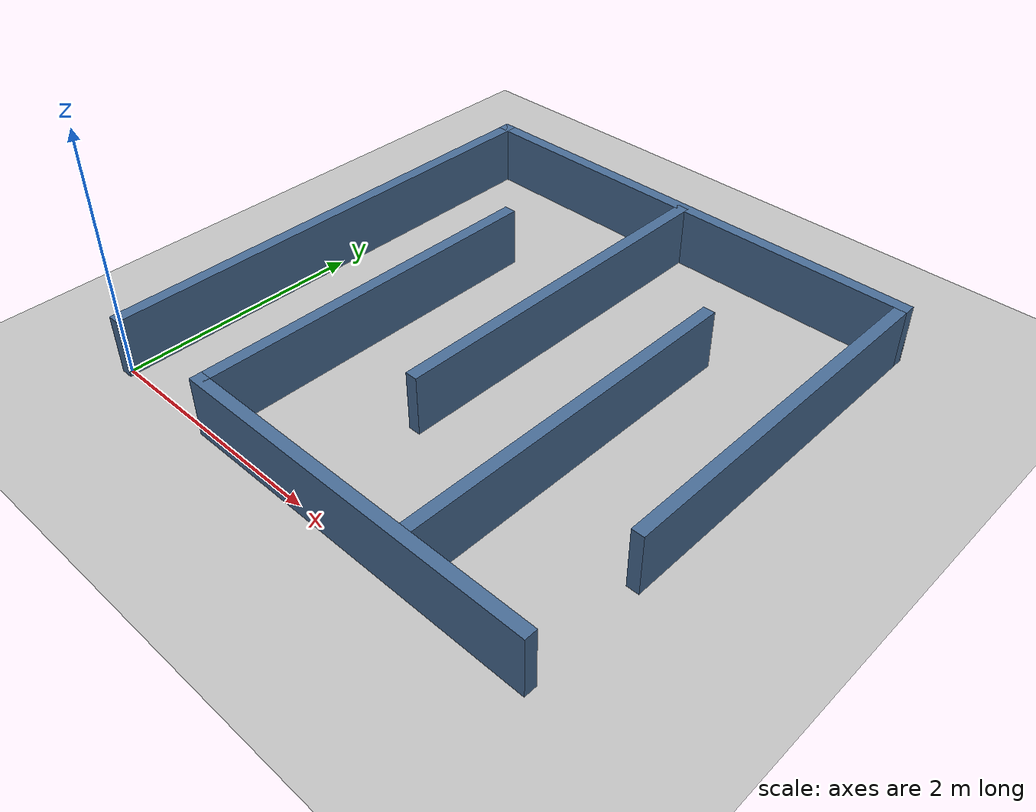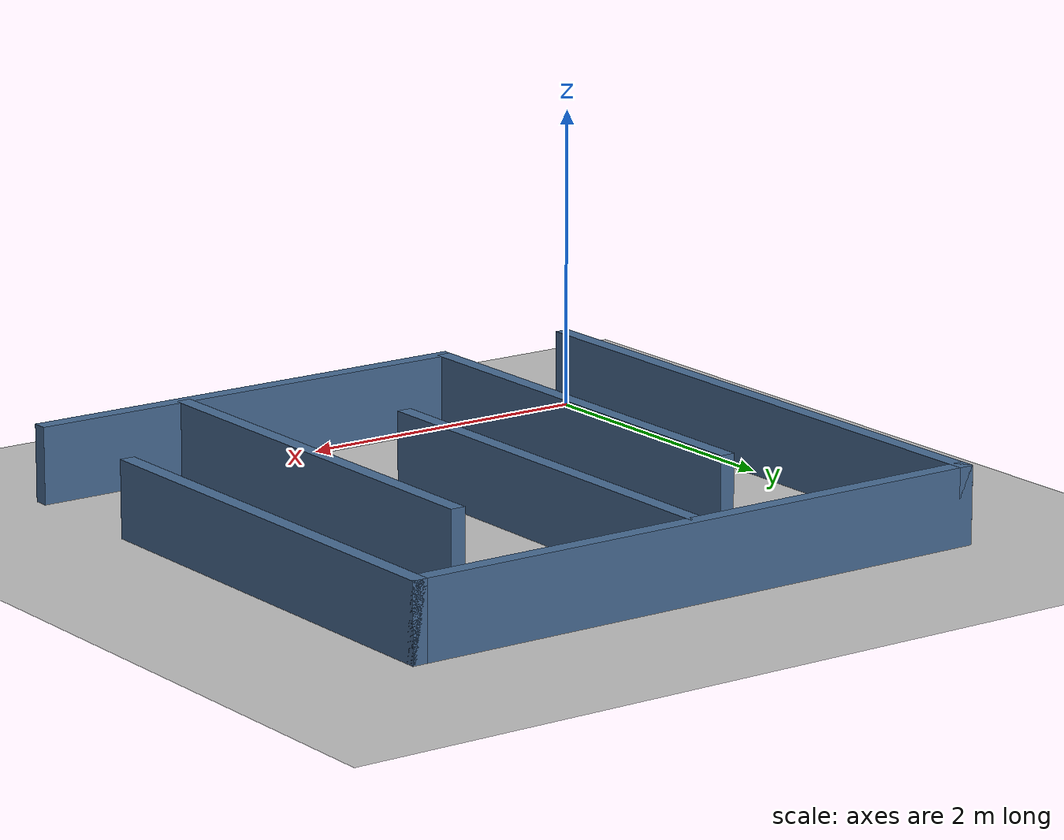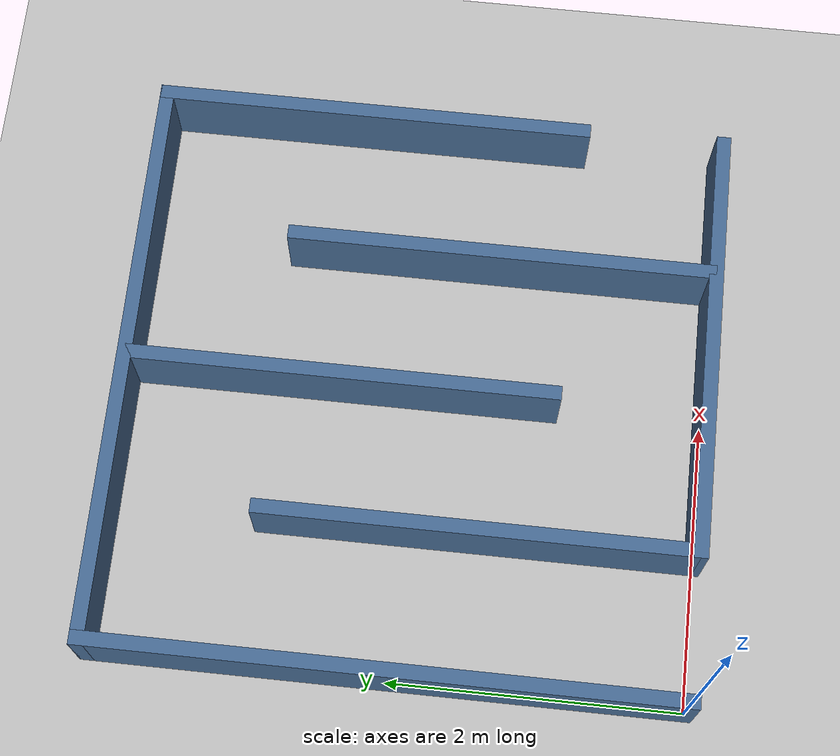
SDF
<sdf version="1.6"><world name="micromouse">
<physics name="ode" type="ode"><max_step_size>0.001</max_step_size><real_time_update_rate>1000</real_time_update_rate></physics>
<gui><camera name="overview"><pose>2 2 6 0 1.570796 -1.570796</pose><view_controller>orbit</view_controller></camera></gui>
<gravity>0 0 -9.81</gravity>
<light name="sun" type="directional"><pose>0 0 10 0 0 0</pose><diffuse>0.8 0.8 0.8 1</diffuse><specular>0.2 0.2 0.2 1</specular><direction>-0.5 0.1 -0.9</direction></light>
<model name="ground"><static>true</static><link name="floor"><collision name="collision"><geometry><plane><normal>0 0 1</normal><size>30 30</size></plane></geometry></collision><visual name="visual"><geometry><plane><normal>0 0 1</normal><size>30 30</size></plane></geometry><material><ambient>0.75 0.75 0.75 1</ambient><diffuse>0.75 0.75 0.75 1</diffuse></material></visual></link></model>
<model name="west"><static>true</static><pose>0 2 0.25 0 0 0</pose><link name="wall"><collision name="collision"><geometry><box><size>0.1 4.1 0.5</size></box></geometry></collision><visual name="visual"><geometry><box><size>0.1 4.1 0.5</size></box></geometry><material><ambient>0.28 0.42 0.58 1</ambient><diffuse>0.28 0.42 0.58 1</diffuse></material></visual></link></model>
<model name="north"><static>true</static><pose>2 4 0.25 0 0 0</pose><link name="wall"><collision name="collision"><geometry><box><size>4.1 0.1 0.5</size></box></geometry></collision><visual name="visual"><geometry><box><size>4.1 0.1 0.5</size></box></geometry><material><ambient>0.28 0.42 0.58 1</ambient><diffuse>0.28 0.42 0.58 1</diffuse></material></visual></link></model>
<model name="south"><static>true</static><pose>2.5 0 0.25 0 0 0</pose><link name="wall"><collision name="collision"><geometry><box><size>3.1 0.1 0.5</size></box></geometry></collision><visual name="visual"><geometry><box><size>3.1 0.1 0.5</size></box></geometry><material><ambient>0.28 0.42 0.58 1</ambient><diffuse>0.28 0.42 0.58 1</diffuse></material></visual></link></model>
<model name="east"><static>true</static><pose>4 2.5 0.25 0 0 0</pose><link name="wall"><collision name="collision"><geometry><box><size>0.1 3.1 0.5</size></box></geometry></collision><visual name="visual"><geometry><box><size>0.1 3.1 0.5</size></box></geometry><material><ambient>0.28 0.42 0.58 1</ambient><diffuse>0.28 0.42 0.58 1</diffuse></material></visual></link></model>
<model name="barrier_1"><static>true</static><pose>1 1.5 0.25 0 0 0</pose><link name="wall"><collision name="collision"><geometry><box><size>0.1 3 0.5</size></box></geometry></collision><visual name="visual"><geometry><box><size>0.1 3 0.5</size></box></geometry><material><ambient>0.28 0.42 0.58 1</ambient><diffuse>0.28 0.42 0.58 1</diffuse></material></visual></link></model>
<model name="barrier_2"><static>true</static><pose>2 2.5 0.25 0 0 0</pose><link name="wall"><collision name="collision"><geometry><box><size>0.1 3 0.5</size></box></geometry></collision><visual name="visual"><geometry><box><size>0.1 3 0.5</size></box></geometry><material><ambient>0.28 0.42 0.58 1</ambient><diffuse>0.28 0.42 0.58 1</diffuse></material></visual></link></model>
<model name="barrier_3"><static>true</static><pose>3 1.5 0.25 0 0 0</pose><link name="wall"><collision name="collision"><geometry><box><size>0.1 3 0.5</size></box></geometry></collision><visual name="visual"><geometry><box><size>0.1 3 0.5</size></box></geometry><material><ambient>0.28 0.42 0.58 1</ambient><diffuse>0.28 0.42 0.58 1</diffuse></material></visual></link></model>
</world></sdf>
